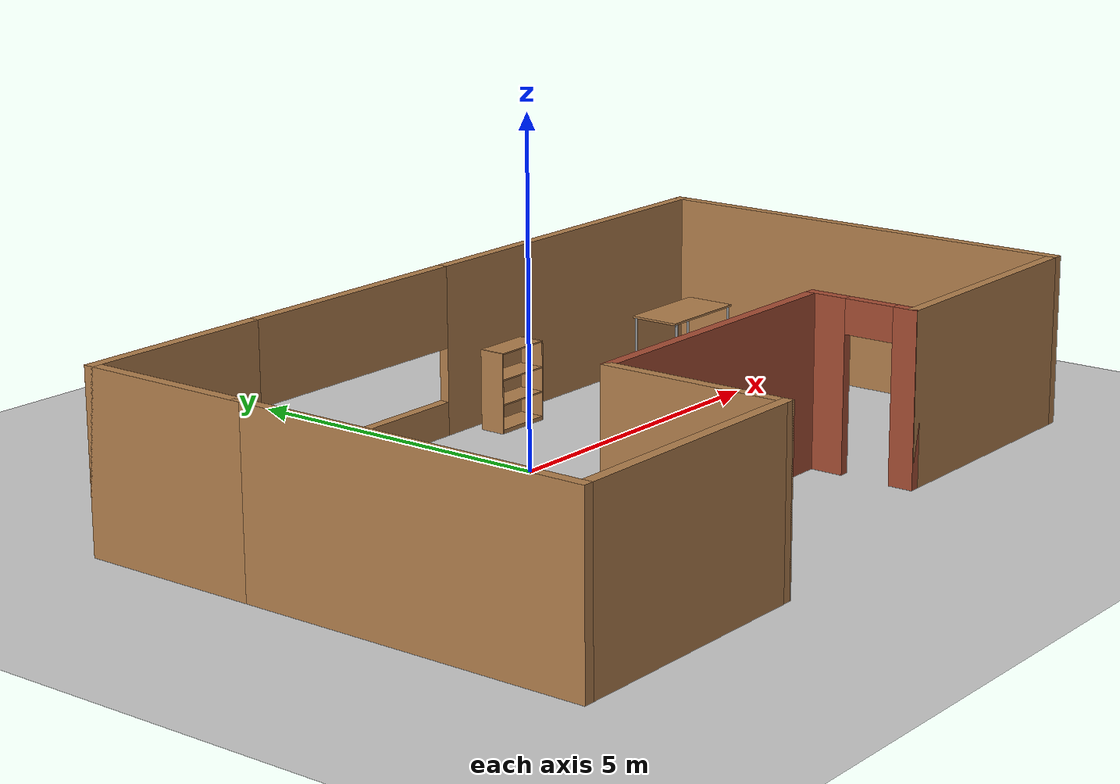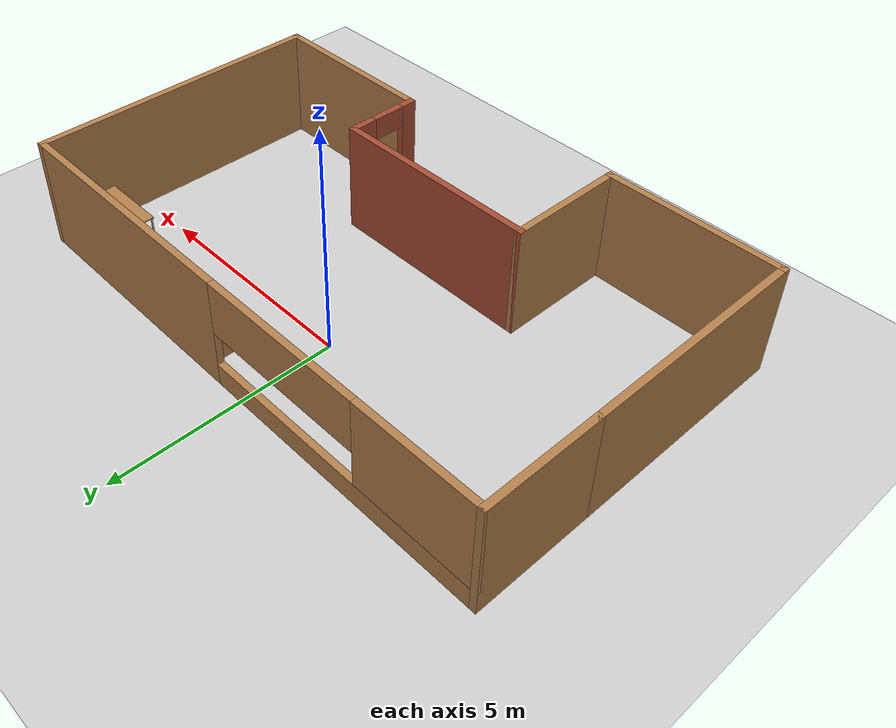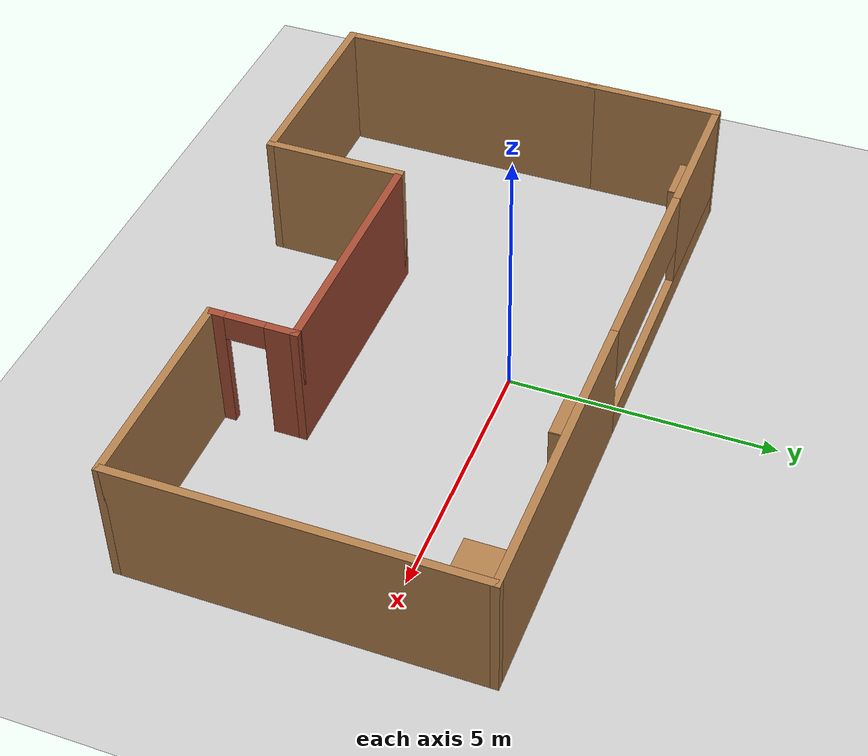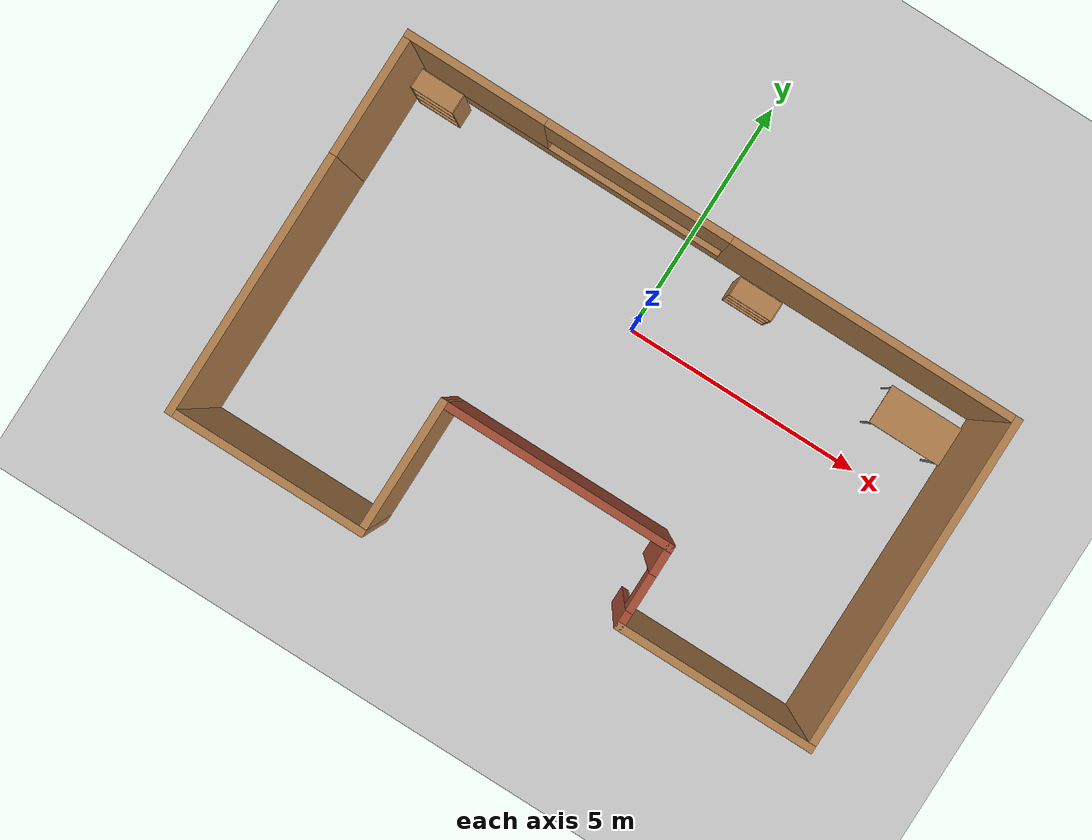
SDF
<sdf version="1.6">
 <world name="default">
  <light name="sun" type="directional">
   <pose>0 0 10 0 -0 0</pose>
   <diffuse>0.8 0.8 0.8 1</diffuse>
   <specular>0.2 0.2 0.2 1</specular>
   <attenuation>
    <range>1000</range>
    <constant>0.9</constant>
    <linear>0.01</linear>
    <quadratic>0.001</quadratic>
   </attenuation>
   <direction>-0.5 0.1 -0.9</direction>
  </light>
  <model name="ground_plane">
   <static>1</static>
   <link name="link">
    <collision name="collision">
     <geometry><plane><normal>0 0 1</normal><size>100 100</size></plane></geometry>
     <surface><friction><ode><mu>100</mu><mu2>50</mu2></ode></friction></surface>
    </collision>
    <visual name="visual">
     <cast_shadows>0</cast_shadows>
     <geometry><plane><normal>0 0 1</normal><size>100 100</size></plane></geometry>
     <material>
      <script><uri>file://media/materials/scripts/gazebo.material</uri><name>Gazebo/Grey</name></script>
     </material>
    </visual>
   </link>
  </model>
  <gravity>0 0 -9.8</gravity>
  <magnetic_field>6e-06 2.3e-05 -4.2e-05</magnetic_field>
  <atmosphere type="adiabatic"/>
  <physics name="default_physics" default="0" type="ode">
   <max_step_size>0.001</max_step_size>
   <real_time_factor>1</real_time_factor>
   <real_time_update_rate>1000</real_time_update_rate>
  </physics>
  <scene><ambient>0.4 0.4 0.4 1</ambient><background>0.7 0.7 0.7 1</background><shadows>1</shadows></scene>
  <spherical_coordinates>
   <surface_model>EARTH_WGS84</surface_model>
   <latitude_deg>0</latitude_deg>
   <longitude_deg>0</longitude_deg>
   <elevation>0</elevation>
   <heading_deg>0</heading_deg>
  </spherical_coordinates>
  <model name="small_home">
   <pose>0.241756 -1.72393 0 0 -0 0</pose>
   <link name="Wall_20">
    <collision name="Wall_20_Collision">
     <geometry><box><size>5.25 0.15 2.5</size></box></geometry>
     <pose>0 0 1.25 0 -0 0</pose>
    </collision>
    <visual name="Wall_20_Visual">
     <pose>0 0 1.25 0 -0 0</pose>
     <geometry><box><size>5.25 0.15 2.5</size></box></geometry>
     <material>
      <script><uri>file://media/materials/scripts/gazebo.material</uri><name>Gazebo/Wood</name></script>
      <ambient>1 1 1 1</ambient>
     </material>
     <meta><layer>0</layer></meta>
    </visual>
    <pose>-6.15002 -1.25009 0 0 0 -1.5708</pose>
   </link>
   <link name="Wall_21">
    <collision name="Wall_21_Collision">
     <geometry><box><size>4 0.15 2.5</size></box></geometry>
     <pose>0 0 1.25 0 -0 0</pose>
    </collision>
    <visual name="Wall_21_Visual">
     <pose>0 0 1.25 0 -0 0</pose>
     <geometry><box><size>4 0.15 2.5</size></box></geometry>
     <material>
      <script><uri>file://media/materials/scripts/gazebo.material</uri><name>Gazebo/Wood</name></script>
      <ambient>1 1 1 1</ambient>
     </material>
     <meta><layer>0</layer></meta>
    </visual>
    <pose>-4.22501 -3.80009 0 0 -0 0</pose>
   </link>
   <link name="Wall_22">
    <collision name="Wall_22_Collision">
     <geometry><box><size>2.75 0.15 2.5</size></box></geometry>
     <pose>0 0 1.25 0 -0 0</pose>
    </collision>
    <visual name="Wall_22_Visual">
     <pose>0 0 1.25 0 -0 0</pose>
     <geometry><box><size>2.75 0.15 2.5</size></box></geometry>
     <material>
      <script><uri>file://media/materials/scripts/gazebo.material</uri><name>Gazebo/Wood</name></script>
      <ambient>1 1 1 1</ambient>
     </material>
     <meta><layer>0</layer></meta>
    </visual>
    <pose>-2.30002 -2.50009 0 0 -0 1.5708</pose>
   </link>
   <link name="Wall_23">
    <collision name="Wall_23_Collision">
     <geometry><box><size>4.75 0.15 2.5</size></box></geometry>
     <pose>0 0 1.25 0 -0 0</pose>
    </collision>
    <visual name="Wall_23_Visual">
     <pose>0 0 1.25 0 -0 0</pose>
     <geometry><box><size>4.75 0.15 2.5</size></box></geometry>
     <material>
      <script><uri>file://media/materials/scripts/gazebo.material</uri><name>Gazebo/Bricks</name></script>
      <ambient>1 1 1 1</ambient>
     </material>
     <meta><layer>0</layer></meta>
    </visual>
    <pose>-1.5e-05 -1.20009 0 0 -0 0</pose>
   </link>
   <link name="Wall_24">
    <pose>2.29998 -2.00009 0 0 0 -1.5708</pose>
    <visual name="Wall_24_Visual_0">
     <pose>-0.56016 0 1.25 0 -0 0</pose>
     <geometry><box><size>0.62968 0.15 2.5</size></box></geometry>
     <material>
      <script><uri>file://media/materials/scripts/gazebo.material</uri><name>Gazebo/Bricks</name></script>
      <ambient>1 1 1 1</ambient>
     </material>
     <meta><layer>0</layer></meta>
    </visual>
    <collision name="Wall_24_Collision_0">
     <geometry><box><size>0.62968 0.15 2.5</size></box></geometry>
     <pose>-0.56016 0 1.25 0 -0 0</pose>
    </collision>
    <visual name="Wall_24_Visual_1">
     <pose>0.689414 0 1.25 0 -0 0</pose>
     <geometry><box><size>0.371172 0.15 2.5</size></box></geometry>
     <material>
      <script><uri>file://media/materials/scripts/gazebo.material</uri><name>Gazebo/Bricks</name></script>
      <ambient>1 1 1 1</ambient>
     </material>
     <meta><layer>0</layer></meta>
    </visual>
    <collision name="Wall_24_Collision_1">
     <geometry><box><size>0.371172 0.15 2.5</size></box></geometry>
     <pose>0.689414 0 1.25 0 -0 0</pose>
    </collision>
    <visual name="Wall_24_Visual_2">
     <pose>0.129254 0 2.25 0 -0 0</pose>
     <geometry><box><size>0.749148 0.15 0.5</size></box></geometry>
     <material>
      <script><uri>file://media/materials/scripts/gazebo.material</uri><name>Gazebo/Bricks</name></script>
      <ambient>1 1 1 1</ambient>
     </material>
     <meta><layer>0</layer></meta>
    </visual>
    <collision name="Wall_24_Collision_2">
     <geometry><box><size>0.749148 0.15 0.5</size></box></geometry>
     <pose>0.129254 0 2.25 0 -0 0</pose>
    </collision>
   </link>
   <link name="Wall_25">
    <collision name="Wall_25_Collision">
     <geometry><box><size>4 0.15 2.5</size></box></geometry>
     <pose>0 0 1.25 0 -0 0</pose>
    </collision>
    <visual name="Wall_25_Visual">
     <pose>0 0 1.25 0 -0 0</pose>
     <geometry><box><size>4 0.15 2.5</size></box></geometry>
     <material>
      <script><uri>file://media/materials/scripts/gazebo.material</uri><name>Gazebo/Wood</name></script>
      <ambient>1 1 1 1</ambient>
     </material>
     <meta><layer>0</layer></meta>
    </visual>
    <pose>4.22498 -2.80009 0 0 -0 0</pose>
   </link>
   <link name="Wall_26">
    <collision name="Wall_26_Collision">
     <geometry><box><size>6.75 0.15 2.5</size></box></geometry>
     <pose>0 0 1.25 0 -0 0</pose>
    </collision>
    <visual name="Wall_26_Visual">
     <pose>0 0 1.25 0 -0 0</pose>
     <geometry><box><size>6.75 0.15 2.5</size></box></geometry>
     <material>
      <script><uri>file://media/materials/scripts/gazebo.material</uri><name>Gazebo/Wood</name></script>
      <ambient>1 1 1 1</ambient>
     </material>
     <meta><layer>0</layer></meta>
    </visual>
    <pose>6.15 0.499835 0 0 -0 1.57079</pose>
   </link>
   <link name="Wall_27">
    <pose>1.7e-05 3.79976 0 0 -0 3.14159</pose>
    <visual name="Wall_27_Visual_0">
     <pose>-3.30322 0 1.25 0 -0 0</pose>
     <geometry><box><size>5.84357 0.15 2.5</size></box></geometry>
     <material>
      <script><uri>file://media/materials/scripts/gazebo.material</uri><name>Gazebo/Wood</name></script>
      <ambient>1 1 1 1</ambient>
     </material>
     <meta><layer>0</layer></meta>
    </visual>
    <collision name="Wall_27_Collision_0">
     <geometry><box><size>5.84357 0.15 2.5</size></box></geometry>
     <pose>-3.30322 0 1.25 0 -0 0</pose>
    </collision>
    <visual name="Wall_27_Visual_1">
     <pose>2.92178 0 0.25 0 -0 0</pose>
     <geometry><box><size>6.60643 0.15 0.5</size></box></geometry>
     <material>
      <script><uri>file://media/materials/scripts/gazebo.material</uri><name>Gazebo/Wood</name></script>
      <ambient>1 1 1 1</ambient>
     </material>
     <meta><layer>0</layer></meta>
    </visual>
    <collision name="Wall_27_Collision_1">
     <geometry><box><size>6.60643 0.15 0.5</size></box></geometry>
     <pose>2.92178 0 0.25 0 -0 0</pose>
    </collision>
    <visual name="Wall_27_Visual_2">
     <pose>4.79929 0 1.5 0 -0 0</pose>
     <geometry><box><size>2.85142 0.15 2</size></box></geometry>
     <material>
      <script><uri>file://media/materials/scripts/gazebo.material</uri><name>Gazebo/Wood</name></script>
      <ambient>1 1 1 1</ambient>
     </material>
     <meta><layer>0</layer></meta>
    </visual>
    <collision name="Wall_27_Collision_2">
     <geometry><box><size>2.85142 0.15 2</size></box></geometry>
     <pose>4.79929 0 1.5 0 -0 0</pose>
    </collision>
    <visual name="Wall_27_Visual_3">
     <pose>1.49608 0 1.9 0 -0 0</pose>
     <geometry><box><size>3.75502 0.15 1.2</size></box></geometry>
     <material>
      <script><uri>file://media/materials/scripts/gazebo.material</uri><name>Gazebo/Wood</name></script>
      <ambient>1 1 1 1</ambient>
     </material>
     <meta><layer>0</layer></meta>
    </visual>
    <collision name="Wall_27_Collision_3">
     <geometry><box><size>3.75502 0.15 1.2</size></box></geometry>
     <pose>1.49608 0 1.9 0 -0 0</pose>
    </collision>
   </link>
   <link name="Wall_28">
    <collision name="Wall_28_Collision">
     <geometry><box><size>2.6505 0.15 2.5</size></box></geometry>
     <pose>0 0 1.25 0 -0 0</pose>
    </collision>
    <visual name="Wall_28_Visual">
     <pose>0 0 1.25 0 -0 0</pose>
     <geometry><box><size>2.6505 0.15 2.5</size></box></geometry>
     <material>
      <script><uri>file://media/materials/scripts/gazebo.material</uri><name>Gazebo/Wood</name></script>
      <ambient>1 1 1 1</ambient>
     </material>
     <meta><layer>0</layer></meta>
    </visual>
    <pose>-6.15 2.54983 0 0 0 -1.57081</pose>
   </link>
   <static>1</static>
  </model>
  <model name="bookshelf">
   <static>1</static>
   <link name="link">
    <inertial><mass>1</mass></inertial>
    <collision name="back">
     <pose>0 0.005 0.6 0 -0 0</pose>
     <geometry><box><size>0.9 0.01 1.2</size></box></geometry>
    </collision>
    <visual name="visual1">
     <pose>0 0.005 0.6 0 -0 0</pose>
     <geometry><box><size>0.9 0.01 1.2</size></box></geometry>
     <material>
      <script><uri>file://media/materials/scripts/gazebo.material</uri><name>Gazebo/Wood</name></script>
     </material>
    </visual>
    <collision name="left_side">
     <pose>0.45 -0.195 0.6 0 -0 0</pose>
     <geometry><box><size>0.02 0.4 1.2</size></box></geometry>
    </collision>
    <visual name="visual2">
     <pose>0.45 -0.195 0.6 0 -0 0</pose>
     <geometry><box><size>0.02 0.4 1.2</size></box></geometry>
     <material>
      <script><uri>file://media/materials/scripts/gazebo.material</uri><name>Gazebo/Wood</name></script>
     </material>
    </visual>
    <collision name="right_side">
     <pose>-0.45 -0.195 0.6 0 -0 0</pose>
     <geometry><box><size>0.02 0.4 1.2</size></box></geometry>
    </collision>
    <visual name="visual3">
     <pose>-0.45 -0.195 0.6 0 -0 0</pose>
     <geometry><box><size>0.02 0.4 1.2</size></box></geometry>
     <material>
      <script><uri>file://media/materials/scripts/gazebo.material</uri><name>Gazebo/Wood</name></script>
     </material>
    </visual>
    <collision name="bottom">
     <pose>0 -0.195 0.03 0 -0 0</pose>
     <geometry><box><size>0.88 0.4 0.06</size></box></geometry>
    </collision>
    <visual name="visual4">
     <pose>0 -0.195 0.03 0 -0 0</pose>
     <geometry><box><size>0.88 0.4 0.06</size></box></geometry>
     <material>
      <script><uri>file://media/materials/scripts/gazebo.material</uri><name>Gazebo/Wood</name></script>
     </material>
    </visual>
    <collision name="top">
     <pose>0 -0.195 1.19 0 -0 0</pose>
     <geometry><box><size>0.88 0.4 0.02</size></box></geometry>
    </collision>
    <visual name="visual5">
     <pose>0 -0.195 1.19 0 -0 0</pose>
     <geometry><box><size>0.88 0.4 0.02</size></box></geometry>
     <material>
      <script><uri>file://media/materials/scripts/gazebo.material</uri><name>Gazebo/Wood</name></script>
     </material>
    </visual>
    <collision name="low_shelf">
     <pose>0 -0.195 0.43 0 -0 0</pose>
     <geometry><box><size>0.88 0.4 0.02</size></box></geometry>
    </collision>
    <visual name="visual6">
     <pose>0 -0.195 0.43 0 -0 0</pose>
     <geometry><box><size>0.88 0.4 0.02</size></box></geometry>
     <material>
      <script><uri>file://media/materials/scripts/gazebo.material</uri><name>Gazebo/Wood</name></script>
     </material>
    </visual>
    <collision name="high_shelf">
     <pose>0 -0.195 0.8 0 -0 0</pose>
     <geometry><box><size>0.88 0.4 0.02</size></box></geometry>
    </collision>
    <visual name="visual7">
     <pose>0 -0.195 0.8 0 -0 0</pose>
     <geometry><box><size>0.88 0.4 0.02</size></box></geometry>
     <material>
      <script><uri>file://media/materials/scripts/gazebo.material</uri><name>Gazebo/Wood</name></script>
     </material>
    </visual>
   </link>
   <pose>1.59836 1.81497 0 0 -0 0</pose>
  </model>
  <model name="bookshelf_clone">
   <static>1</static>
   <link name="link">
    <inertial><mass>1</mass></inertial>
    <collision name="back">
     <pose>0 0.005 0.6 0 -0 0</pose>
     <geometry><box><size>0.9 0.01 1.2</size></box></geometry>
    </collision>
    <visual name="visual1">
     <pose>0 0.005 0.6 0 -0 0</pose>
     <geometry><box><size>0.9 0.01 1.2</size></box></geometry>
     <material>
      <script><uri>file://media/materials/scripts/gazebo.material</uri><name>Gazebo/Wood</name></script>
     </material>
    </visual>
    <collision name="left_side">
     <pose>0.45 -0.195 0.6 0 -0 0</pose>
     <geometry><box><size>0.02 0.4 1.2</size></box></geometry>
    </collision>
    <visual name="visual2">
     <pose>0.45 -0.195 0.6 0 -0 0</pose>
     <geometry><box><size>0.02 0.4 1.2</size></box></geometry>
     <material>
      <script><uri>file://media/materials/scripts/gazebo.material</uri><name>Gazebo/Wood</name></script>
     </material>
    </visual>
    <collision name="right_side">
     <pose>-0.45 -0.195 0.6 0 -0 0</pose>
     <geometry><box><size>0.02 0.4 1.2</size></box></geometry>
    </collision>
    <visual name="visual3">
     <pose>-0.45 -0.195 0.6 0 -0 0</pose>
     <geometry><box><size>0.02 0.4 1.2</size></box></geometry>
     <material>
      <script><uri>file://media/materials/scripts/gazebo.material</uri><name>Gazebo/Wood</name></script>
     </material>
    </visual>
    <collision name="bottom">
     <pose>0 -0.195 0.03 0 -0 0</pose>
     <geometry><box><size>0.88 0.4 0.06</size></box></geometry>
    </collision>
    <visual name="visual4">
     <pose>0 -0.195 0.03 0 -0 0</pose>
     <geometry><box><size>0.88 0.4 0.06</size></box></geometry>
     <material>
      <script><uri>file://media/materials/scripts/gazebo.material</uri><name>Gazebo/Wood</name></script>
     </material>
    </visual>
    <collision name="top">
     <pose>0 -0.195 1.19 0 -0 0</pose>
     <geometry><box><size>0.88 0.4 0.02</size></box></geometry>
    </collision>
    <visual name="visual5">
     <pose>0 -0.195 1.19 0 -0 0</pose>
     <geometry><box><size>0.88 0.4 0.02</size></box></geometry>
     <material>
      <script><uri>file://media/materials/scripts/gazebo.material</uri><name>Gazebo/Wood</name></script>
     </material>
    </visual>
    <collision name="low_shelf">
     <pose>0 -0.195 0.43 0 -0 0</pose>
     <geometry><box><size>0.88 0.4 0.02</size></box></geometry>
    </collision>
    <visual name="visual6">
     <pose>0 -0.195 0.43 0 -0 0</pose>
     <geometry><box><size>0.88 0.4 0.02</size></box></geometry>
     <material>
      <script><uri>file://media/materials/scripts/gazebo.material</uri><name>Gazebo/Wood</name></script>
     </material>
    </visual>
    <collision name="high_shelf">
     <pose>0 -0.195 0.8 0 -0 0</pose>
     <geometry><box><size>0.88 0.4 0.02</size></box></geometry>
    </collision>
    <visual name="visual7">
     <pose>0 -0.195 0.8 0 -0 0</pose>
     <geometry><box><size>0.88 0.4 0.02</size></box></geometry>
     <material>
      <script><uri>file://media/materials/scripts/gazebo.material</uri><name>Gazebo/Wood</name></script>
     </material>
    </visual>
   </link>
   <pose>-5.30027 1.89799 0 0 -0 0</pose>
  </model>
  <model name="table">
   <static>1</static>
   <link name="link">
    <collision name="surface">
     <pose>0 0 1 0 -0 0</pose>
     <geometry><box><size>1.5 0.8 0.03</size></box></geometry>
     <surface><friction><ode><mu>0.6</mu><mu2>0.6</mu2></ode></friction></surface>
    </collision>
    <visual name="visual1">
     <pose>0 0 1 0 -0 0</pose>
     <geometry><box><size>1.5 0.8 0.03</size></box></geometry>
     <material>
      <script><uri>file://media/materials/scripts/gazebo.material</uri><name>Gazebo/Wood</name></script>
     </material>
    </visual>
    <collision name="front_left_leg">
     <pose>0.68 0.38 0.5 0 -0 0</pose>
     <geometry><cylinder><radius>0.02</radius><length>1</length></cylinder></geometry>
    </collision>
    <visual name="front_left_leg">
     <pose>0.68 0.38 0.5 0 -0 0</pose>
     <geometry><cylinder><radius>0.02</radius><length>1</length></cylinder></geometry>
     <material>
      <script><uri>file://media/materials/scripts/gazebo.material</uri><name>Gazebo/Grey</name></script>
     </material>
    </visual>
    <collision name="front_right_leg">
     <pose>0.68 -0.38 0.5 0 -0 0</pose>
     <geometry><cylinder><radius>0.02</radius><length>1</length></cylinder></geometry>
    </collision>
    <visual name="front_right_leg">
     <pose>0.68 -0.38 0.5 0 -0 0</pose>
     <geometry><cylinder><radius>0.02</radius><length>1</length></cylinder></geometry>
     <material>
      <script><uri>file://media/materials/scripts/gazebo.material</uri><name>Gazebo/Grey</name></script>
     </material>
    </visual>
    <collision name="back_right_leg">
     <pose>-0.68 -0.38 0.5 0 -0 0</pose>
     <geometry><cylinder><radius>0.02</radius><length>1</length></cylinder></geometry>
    </collision>
    <visual name="back_right_leg">
     <pose>-0.68 -0.38 0.5 0 -0 0</pose>
     <geometry><cylinder><radius>0.02</radius><length>1</length></cylinder></geometry>
     <material>
      <script><uri>file://media/materials/scripts/gazebo.material</uri><name>Gazebo/Grey</name></script>
     </material>
    </visual>
    <collision name="back_left_leg">
     <pose>-0.68 0.38 0.5 0 -0 0</pose>
     <geometry><cylinder><radius>0.02</radius><length>1</length></cylinder></geometry>
    </collision>
    <visual name="back_left_leg">
     <pose>-0.68 0.38 0.5 0 -0 0</pose>
     <geometry><cylinder><radius>0.02</radius><length>1</length></cylinder></geometry>
     <material>
      <script><uri>file://media/materials/scripts/gazebo.material</uri><name>Gazebo/Grey</name></script>
     </material>
    </visual>
   </link>
   <pose>5.31585 1.25692 0 0 -0 0</pose>
  </model>
 </world>
</sdf>
